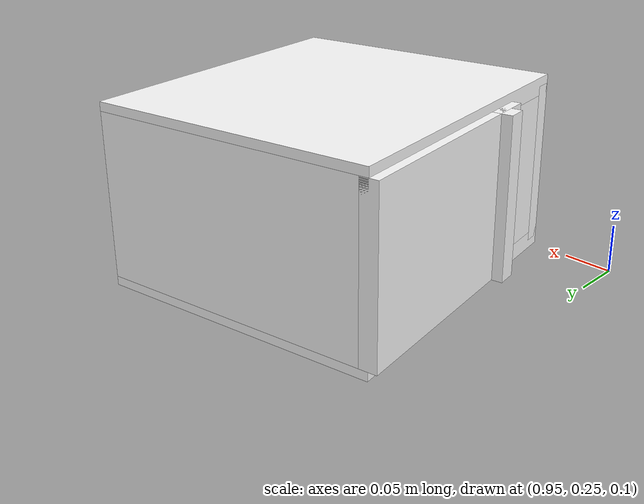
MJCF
<mujoco model="cabinet">
    <compiler angle="radian" eulerseq='zxy' />
    <option gravity = "0 0 0" />
    <option>
        <flag contact = "disable"/>
    </option>
    <statistic	extent="1.0" center="0.0 0.0 0.0"/>
    <visual>
        <map fogstart="3" fogend="5" force="0.1" znear=" 0.100000 " zfar=" 12.000000 "/>
    </visual>
    <size njmax="500" nconmax="100" />
    <actuator>
        <velocity joint="bottom_left_hinge" name="viva_revolution" kv='10'></velocity>
    </actuator>
    <asset>
        <texture builtin="flat" name="tabletex" height="32" width="32" rgb1="1 1 1" type="cube"></texture>
        <texture builtin="flat" name="objtex" height="32" width="32" rgb1="1 1 1" type="cube"></texture>
        <texture builtin="flat" name="handletex" height="32" width="32" rgb1="1 1 1" type="cube"></texture>
        <texture builtin="flat" name="wallpaper" height="32" width="32" rgb1="1 0 0" type="cube"></texture>
        <texture builtin="flat" name="kp" height="32" width="32" rgb1="1 1 1" type="cube"></texture>
        <material name="geomTable" shininess="0.03" specular="0.75" texture="tabletex"></material>
        <material name="geomObj" shininess="0.03" specular="0.75" texture="objtex"></material>
        <material name="geomHandle" shininess="0.03" specular="0.75" texture="handletex"></material>
        <material name="ax" shininess="0.03" specular="0.75" texture="wallpaper"></material>
        <material name="bg" shininess="0.03" specular="0.75" texture="wallpaper"></material>
        <material name="geomKeypad" shininess="0.03" specular="0.75" texture="kp"></material>
    </asset>
    <worldbody>
        <body name="cabinet_bottom" pos= " 1.145884 0.447163 0.121874 "  quat= " -0.081131 0.000000 0.000000 0.996703" >
            <inertial pos="0 0 0" mass="1" diaginertia="1 1 1" />
            <geom size= " 0.144228 0.158123 0.008956 "  type="box" material="geomObj" name="b"/>
            <body name="cabinet_left" pos= " 0.000000 -0.149167 0.082347 " >
                <inertial pos="0 0 0" mass="1" diaginertia="1 1 1" />
                <geom size= " 0.144228 0.008956 0.082347 "  type="box" material="geomObj" name="c" />
            </body>
            <body name="cabinet_right" pos= " 0.000000 0.149167 0.082347 " >
                <inertial pos="0 0 0" mass="1" diaginertia="1 1 1" />
                <geom size= " 0.144228 0.008956 0.082347 "  type="box" material="geomObj" name="d" />
            </body>
            <body name="cabinet_top" pos= " 0.000000 0.000000 0.164693 " >
                <inertial pos="0 0 0" mass="1" diaginertia="1 1 1" />
                <geom size= " 0.144228 0.158123 0.008956 "  type="box" material="geomObj" name="e"/>
            </body>
            <body name="cabinet_back" pos= " -0.135272 0.000000 0.082347 "  >
                <inertial pos="0 0 0" mass="1" diaginertia="1 1 1" />
                <geom size= " 0.008956 0.158123 0.082347 "  type="box" material="geomObj" name="f" />
            </body>
            <body name="cabinet_keypad" pos= " 0.008956 0.117593 0.082347 " >
                <inertial pos="0 0 0" mass="1" diaginertia="1 1 1" />
                <geom size= " 0.135272 0.039531 0.073390 "  type="box" material="geomKeypad" name="keypizzlemynizzle" />
            </body>
            <body name="cabinet_left_hinge" pos= " 0.144228 -0.158123 0.082347 " >
                <inertial pos= " 0.000000 0.118593 0.000000 "  mass="1" diaginertia="1 1 1" />
                <joint name="bottom_left_hinge" type="hinge" pos="0 0 0" axis="0 0 1" limited="true" range= "-2.3 0"  />
                <geom size= " 0.008956 0.118593 0.082347 "  pos= " 0.000000 0.118593 0.000000 "  type="box" material="geomObj" name="g"/>
                <body name="handle_link" pos= " 0.010000 0.207185 0.000000 " >
                    <inertial pos="0 0 0" mass="1" diaginertia="1 1 1" />
                    <geom size= " 0.010000 0.010000 0.082347 "  type="box" material="geomHandle" name="h"/>
                </body>
            </body>
        </body>
        <body name="external_camera_body_0" pos="0.0 0 0.00" >
            <camera euler="-1.57 1.57 0.0" fovy=" 54.280851 " name="external_camera_0" pos="0.0 0 0"></camera>
            <inertial pos= " 0.00 0.0 0.000000 " mass="1" diaginertia="1 1 1" />
            <joint name="cam_j" pos="0.0 0 0" axis = "1 0 0" type="free" />
        </body>
    </worldbody>
</mujoco>
